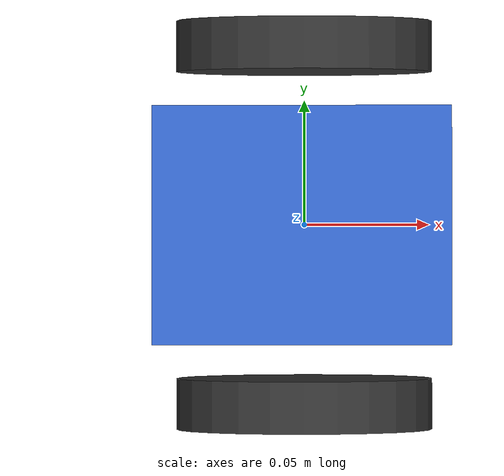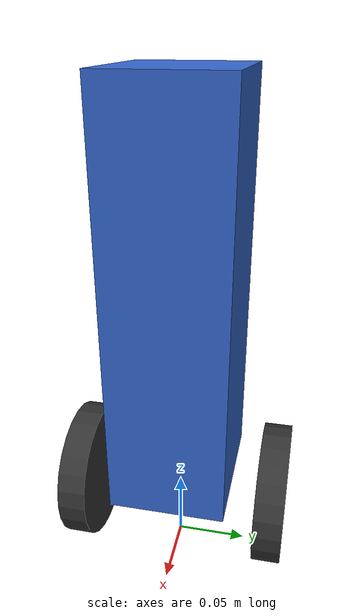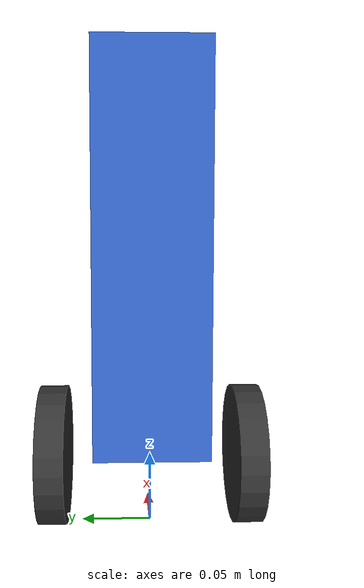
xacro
<?xml version="1.0"?>
<robot name="balance_robot" xmlns:xacro="http://www.ros.org/wiki/xacro">

  <!-- ===================== Properties ====================== -->
  <xacro:property name="body_mass"       value="1.0"/>
  <xacro:property name="body_width"      value="0.10"/>
  <xacro:property name="body_depth"      value="0.08"/>
  <xacro:property name="body_height"     value="0.28"/>
  <xacro:property name="wheel_mass"      value="0.1"/>
  <xacro:property name="wheel_radius"    value="0.05"/>
  <xacro:property name="wheel_width"     value="0.02"/>
  <xacro:property name="body_com_height" value="0.15"/>
  <xacro:property name="wheel_sep"       value="0.14"/>

  <!-- ===================== Inertia Macros ================== -->
  <xacro:macro name="box_inertia" params="m w h d">
    <inertial>
      <mass value="${m}"/>
      <inertia
        ixx="${(1/12)*m*(h*h + d*d)}"
        iyy="${(1/12)*m*(w*w + d*d)}"
        izz="${(1/12)*m*(w*w + h*h)}"
        ixy="0" ixz="0" iyz="0"/>
    </inertial>
  </xacro:macro>

  <xacro:macro name="cylinder_inertia" params="m r l">
    <inertial>
      <mass value="${m}"/>
      <inertia
        ixx="${(1/12)*m*(3*r*r + l*l)}"
        iyy="${(1/2)*m*r*r}"
        izz="${(1/12)*m*(3*r*r + l*l)}"
        ixy="0" ixz="0" iyz="0"/>
    </inertial>
  </xacro:macro>

  <!-- ===================== Links ============================ -->
  <link name="base_footprint"/>

  <link name="base_link">
    <visual>
      <origin xyz="0 0 ${body_com_height}" rpy="0 0 0"/>
      <geometry>
        <box size="${body_width} ${body_depth} ${body_height}"/>
      </geometry>
      <material name="blue">
        <color rgba="0.2 0.4 0.8 1.0"/>
      </material>
    </visual>
    <collision>
      <origin xyz="0 0 ${body_com_height}" rpy="0 0 0"/>
      <geometry>
        <box size="${body_width} ${body_depth} ${body_height}"/>
      </geometry>
    </collision>
    <xacro:box_inertia m="${body_mass}" w="${body_width}" h="${body_height}" d="${body_depth}"/>
  </link>

  <link name="imu_link">
    <visual>
      <geometry><box size="0.01 0.01 0.01"/></geometry>
      <material name="red"><color rgba="1 0 0 1"/></material>
    </visual>
  </link>

  <link name="left_wheel_link">
    <visual>
      <origin xyz="0 0 0" rpy="${pi/2} 0 0"/>
      <geometry>
        <cylinder radius="${wheel_radius}" length="${wheel_width}"/>
      </geometry>
      <material name="dark_gray">
        <color rgba="0.2 0.2 0.2 1.0"/>
      </material>
    </visual>
    <collision>
      <origin xyz="0 0 0" rpy="${pi/2} 0 0"/>
      <geometry>
        <cylinder radius="${wheel_radius}" length="${wheel_width}"/>
      </geometry>
    </collision>
    <xacro:cylinder_inertia m="${wheel_mass}" r="${wheel_radius}" l="${wheel_width}"/>
  </link>

  <link name="right_wheel_link">
    <visual>
      <origin xyz="0 0 0" rpy="${pi/2} 0 0"/>
      <geometry>
        <cylinder radius="${wheel_radius}" length="${wheel_width}"/>
      </geometry>
      <material name="dark_gray">
        <color rgba="0.2 0.2 0.2 1.0"/>
      </material>
    </visual>
    <collision>
      <origin xyz="0 0 0" rpy="${pi/2} 0 0"/>
      <geometry>
        <cylinder radius="${wheel_radius}" length="${wheel_width}"/>
      </geometry>
    </collision>
    <xacro:cylinder_inertia m="${wheel_mass}" r="${wheel_radius}" l="${wheel_width}"/>
  </link>

  <!-- ===================== Joints ========================== -->
  <joint name="base_footprint_joint" type="fixed">
    <parent link="base_footprint"/>
    <child  link="base_link"/>
    <origin xyz="0 0 ${wheel_radius}" rpy="0 0 0"/>
  </joint>

  <joint name="imu_joint" type="fixed">
    <parent link="base_link"/>
    <child  link="imu_link"/>
    <origin xyz="0 0 ${body_com_height}" rpy="0 0 0"/>
  </joint>

  <joint name="left_wheel_joint" type="continuous">
    <parent link="base_link"/>
    <child  link="left_wheel_link"/>
    <origin xyz="0 ${wheel_sep/2} 0" rpy="0 0 0"/>
    <axis xyz="0 1 0"/>
    <dynamics damping="0.01" friction="0.1"/>
  </joint>

  <joint name="right_wheel_joint" type="continuous">
    <parent link="base_link"/>
    <child  link="right_wheel_link"/>
    <origin xyz="0 ${-wheel_sep/2} 0" rpy="0 0 0"/>
    <axis xyz="0 1 0"/>
    <dynamics damping="0.01" friction="0.1"/>
  </joint>

  <!-- ===================== Gazebo Plugins ================== -->

  <!-- IMU sensor -->
  <gazebo reference="imu_link">
    <sensor name="imu_sensor" type="imu">
      <always_on>true</always_on>
      <update_rate>200</update_rate>
      <plugin name="imu_plugin" filename="libgazebo_ros_imu_sensor.so">
        <ros>
          <remapping>~/out:=/imu/data</remapping>
        </ros>
        <initial_orientation_as_reference>false</initial_orientation_as_reference>
        <frame_name>imu_link</frame_name>
      </plugin>
      <imu>
        <angular_velocity>
          <x><noise type="gaussian"><mean>0</mean><stddev>0.002</stddev></noise></x>
          <y><noise type="gaussian"><mean>0</mean><stddev>0.002</stddev></noise></y>
          <z><noise type="gaussian"><mean>0</mean><stddev>0.002</stddev></noise></z>
        </angular_velocity>
        <linear_acceleration>
          <x><noise type="gaussian"><mean>0</mean><stddev>0.017</stddev></noise></x>
          <y><noise type="gaussian"><mean>0</mean><stddev>0.017</stddev></noise></y>
          <z><noise type="gaussian"><mean>0</mean><stddev>0.017</stddev></noise></z>
        </linear_acceleration>
      </imu>
    </sensor>
  </gazebo>

  <!-- Differential drive controller
       Subscribes to /cmd_vel_wheels → drives left/right wheel joints
       Publishes  /odom              → odometry for velocity feedback   -->
  <gazebo>
    <plugin name="differential_drive_controller" filename="libgazebo_ros_diff_drive.so">
      <ros>
        <remapping>cmd_vel:=cmd_vel_wheels</remapping>
        <remapping>odom:=odom</remapping>
      </ros>
      <left_joint>left_wheel_joint</left_joint>
      <right_joint>right_wheel_joint</right_joint>
      <wheel_separation>${wheel_sep}</wheel_separation>
      <wheel_diameter>${2*wheel_radius}</wheel_diameter>
      <max_wheel_torque>20</max_wheel_torque>
      <max_wheel_acceleration>10</max_wheel_acceleration>
      <publish_odom>true</publish_odom>
      <publish_odom_tf>true</publish_odom_tf>
      <publish_wheel_tf>false</publish_wheel_tf>
      <odometry_frame>odom</odometry_frame>
      <robot_base_frame>base_footprint</robot_base_frame>
    </plugin>
  </gazebo>

  <!-- Wheel friction -->
  <gazebo reference="left_wheel_link">
    <mu1>1.0</mu1><mu2>1.0</mu2>
    <kp>1e6</kp><kd>100</kd>
    <material>Gazebo/DarkGrey</material>
  </gazebo>
  <gazebo reference="right_wheel_link">
    <mu1>1.0</mu1><mu2>1.0</mu2>
    <kp>1e6</kp><kd>100</kd>
    <material>Gazebo/DarkGrey</material>
  </gazebo>
  <gazebo reference="base_link">
    <material>Gazebo/Blue</material>
  </gazebo>

</robot>
